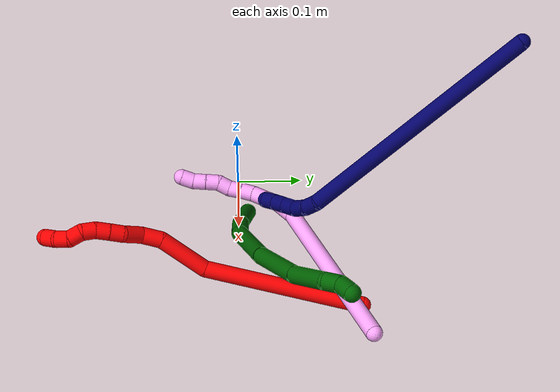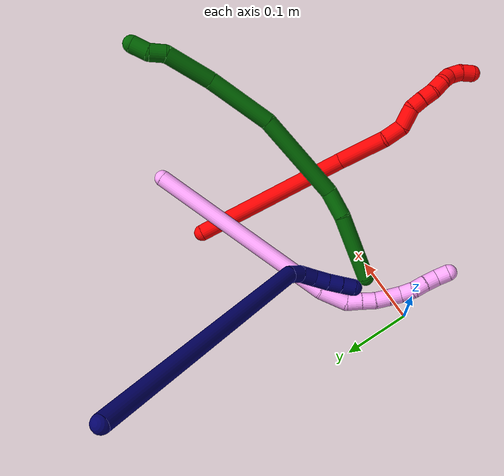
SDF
<sdf version="1.7">
 <world name="default">
  <model name="2">
   <static>0</static>
   <link name="2">
    <collision name="collision-cylinder-e_1_1_4">
     <pose>0.037295 -0.091287 -0.067918 2.21045 0.316739 0.615567</pose>
     <geometry><cylinder><radius>0.0125</radius><length>0.239475</length></cylinder></geometry>
     <surface>
      <friction><ode><mu>1.16</mu><mu2>1.16</mu2><slip1>0</slip1><slip2>0</slip2></ode></friction>
      <contact><ode><kp>1e+06</kp><kd>1</kd><max_vel>0</max_vel><min_depth>0.001</min_depth></ode></contact>
     </surface>
    </collision>
    <visual name="visual-cylinder-e_1_1_4">
     <pose>0.037295 -0.091287 -0.067918 2.21045 0.316739 0.615567</pose>
     <geometry><cylinder><radius>0.0125</radius><length>0.239475</length></cylinder></geometry>
     <material><ambient>1 0 0 1</ambient></material>
    </visual>
    <collision name="collision-cylinder-e_2_4_5">
     <pose>0.087387 -0.200744 -0.167629 2.62237 0.336209 1.13713</pose>
     <geometry><cylinder><radius>0.0125</radius><length>0.077581</length></cylinder></geometry>
     <surface>
      <friction><ode><mu>1.16</mu><mu2>1.16</mu2><slip1>0</slip1><slip2>0</slip2></ode></friction>
      <contact><ode><kp>1e+06</kp><kd>1</kd><max_vel>0</max_vel><min_depth>0.001</min_depth></ode></contact>
     </surface>
    </collision>
    <visual name="visual-cylinder-e_2_4_5">
     <pose>0.087387 -0.200744 -0.167629 2.62237 0.336209 1.13713</pose>
     <geometry><cylinder><radius>0.0125</radius><length>0.077581</length></cylinder></geometry>
     <material><ambient>1 0 0 1</ambient></material>
    </visual>
    <collision name="collision-cylinder-e_3_5_6">
     <pose>0.103304 -0.230261 -0.209207 2.28241 0.205283 0.442317</pose>
     <geometry><cylinder><radius>0.0125</radius><length>0.030608</length></cylinder></geometry>
     <surface>
      <friction><ode><mu>1.16</mu><mu2>1.16</mu2><slip1>0</slip1><slip2>0</slip2></ode></friction>
      <contact><ode><kp>1e+06</kp><kd>1</kd><max_vel>0</max_vel><min_depth>0.001</min_depth></ode></contact>
     </surface>
    </collision>
    <visual name="visual-cylinder-e_3_5_6">
     <pose>0.103304 -0.230261 -0.209207 2.28241 0.205283 0.442317</pose>
     <geometry><cylinder><radius>0.0125</radius><length>0.030608</length></cylinder></geometry>
     <material><ambient>1 0 0 1</ambient></material>
    </visual>
    <collision name="collision-cylinder-e_4_6_7">
     <pose>0.101648 -0.251955 -0.229848 2.38018 -0.308231 -0.740491</pose>
     <geometry><cylinder><radius>0.0125</radius><length>0.031479</length></cylinder></geometry>
     <surface>
      <friction><ode><mu>1.16</mu><mu2>1.16</mu2><slip1>0</slip1><slip2>0</slip2></ode></friction>
      <contact><ode><kp>1e+06</kp><kd>1</kd><max_vel>0</max_vel><min_depth>0.001</min_depth></ode></contact>
     </surface>
    </collision>
    <visual name="visual-cylinder-e_4_6_7">
     <pose>0.101648 -0.251955 -0.229848 2.38018 -0.308231 -0.740491</pose>
     <geometry><cylinder><radius>0.0125</radius><length>0.031479</length></cylinder></geometry>
     <material><ambient>1 0 0 1</ambient></material>
    </visual>
    <collision name="collision-cylinder-e_5_7_8">
     <pose>0.097932 -0.270136 -0.246971 2.24555 0.105153 0.218121</pose>
     <geometry><cylinder><radius>0.0125</radius><length>0.020176</length></cylinder></geometry>
     <surface>
      <friction><ode><mu>1.16</mu><mu2>1.16</mu2><slip1>0</slip1><slip2>0</slip2></ode></friction>
      <contact><ode><kp>1e+06</kp><kd>1</kd><max_vel>0</max_vel><min_depth>0.001</min_depth></ode></contact>
     </surface>
    </collision>
    <visual name="visual-cylinder-e_5_7_8">
     <pose>0.097932 -0.270136 -0.246971 2.24555 0.105153 0.218121</pose>
     <geometry><cylinder><radius>0.0125</radius><length>0.020176</length></cylinder></geometry>
     <material><ambient>1 0 0 1</ambient></material>
    </visual>
    <collision name="collision-cylinder-e_6_8_9">
     <pose>0.100683 -0.286177 -0.258938 2.17784 0.16772 0.318717</pose>
     <geometry><cylinder><radius>0.0125</radius><length>0.020269</length></cylinder></geometry>
     <surface>
      <friction><ode><mu>1.16</mu><mu2>1.16</mu2><slip1>0</slip1><slip2>0</slip2></ode></friction>
      <contact><ode><kp>1e+06</kp><kd>1</kd><max_vel>0</max_vel><min_depth>0.001</min_depth></ode></contact>
     </surface>
    </collision>
    <visual name="visual-cylinder-e_6_8_9">
     <pose>0.100683 -0.286177 -0.258938 2.17784 0.16772 0.318717</pose>
     <geometry><cylinder><radius>0.0125</radius><length>0.020269</length></cylinder></geometry>
     <material><ambient>1 0 0 1</ambient></material>
    </visual>
    <collision name="collision-cylinder-e_7_9_10">
     <pose>0.102095 -0.303619 -0.268661 1.98166 -0.027733 -0.042329</pose>
     <geometry><cylinder><radius>0.0125</radius><length>0.020155</length></cylinder></geometry>
     <surface>
      <friction><ode><mu>1.16</mu><mu2>1.16</mu2><slip1>0</slip1><slip2>0</slip2></ode></friction>
      <contact><ode><kp>1e+06</kp><kd>1</kd><max_vel>0</max_vel><min_depth>0.001</min_depth></ode></contact>
     </surface>
    </collision>
    <visual name="visual-cylinder-e_7_9_10">
     <pose>0.102095 -0.303619 -0.268661 1.98166 -0.027733 -0.042329</pose>
     <geometry><cylinder><radius>0.0125</radius><length>0.020155</length></cylinder></geometry>
     <material><ambient>1 0 0 1</ambient></material>
    </visual>
    <collision name="collision-cylinder-e_8_10_11">
     <pose>0.102023 -0.322948 -0.272143 1.51713 0.020455 0.019386</pose>
     <geometry><cylinder><radius>0.0125</radius><length>0.020221</length></cylinder></geometry>
     <surface>
      <friction><ode><mu>1.16</mu><mu2>1.16</mu2><slip1>0</slip1><slip2>0</slip2></ode></friction>
      <contact><ode><kp>1e+06</kp><kd>1</kd><max_vel>0</max_vel><min_depth>0.001</min_depth></ode></contact>
     </surface>
    </collision>
    <visual name="visual-cylinder-e_8_10_11">
     <pose>0.102023 -0.322948 -0.272143 1.51713 0.020455 0.019386</pose>
     <geometry><cylinder><radius>0.0125</radius><length>0.020221</length></cylinder></geometry>
     <material><ambient>1 0 0 1</ambient></material>
    </visual>
    <collision name="collision-cylinder-e_9_11_12">
     <pose>0.106302 -0.34187 -0.273997 1.83585 0.418807 0.542114</pose>
     <geometry><cylinder><radius>0.0125</radius><length>0.020026</length></cylinder></geometry>
     <surface>
      <friction><ode><mu>1.16</mu><mu2>1.16</mu2><slip1>0</slip1><slip2>0</slip2></ode></friction>
      <contact><ode><kp>1e+06</kp><kd>1</kd><max_vel>0</max_vel><min_depth>0.001</min_depth></ode></contact>
     </surface>
    </collision>
    <visual name="visual-cylinder-e_9_11_12">
     <pose>0.106302 -0.34187 -0.273997 1.83585 0.418807 0.542114</pose>
     <geometry><cylinder><radius>0.0125</radius><length>0.020026</length></cylinder></geometry>
     <material><ambient>1 0 0 1</ambient></material>
    </visual>
    <collision name="collision-cylinder-e_10_12_2">
     <pose>0.117249 -0.357853 -0.277673 1.74775 0.757574 0.8877</pose>
     <geometry><cylinder><radius>0.0125</radius><length>0.020011</length></cylinder></geometry>
     <surface>
      <friction><ode><mu>1.16</mu><mu2>1.16</mu2><slip1>0</slip1><slip2>0</slip2></ode></friction>
      <contact><ode><kp>1e+06</kp><kd>1</kd><max_vel>0</max_vel><min_depth>0.001</min_depth></ode></contact>
     </surface>
    </collision>
    <visual name="visual-cylinder-e_10_12_2">
     <pose>0.117249 -0.357853 -0.277673 1.74775 0.757574 0.8877</pose>
     <geometry><cylinder><radius>0.0125</radius><length>0.020011</length></cylinder></geometry>
     <material><ambient>1 0 0 1</ambient></material>
    </visual>
    <collision name="collision-sphere-2">
     <pose>0.124124 -0.365009 -0.278952 0 -0 0</pose>
     <geometry><sphere><radius>0.0125</radius></sphere></geometry>
     <surface>
      <friction><ode><mu>1.16</mu><mu2>1.16</mu2><slip1>0</slip1><slip2>0</slip2></ode></friction>
      <contact><ode><kp>1e+06</kp><kd>1</kd><max_vel>0</max_vel><min_depth>0.001</min_depth></ode></contact>
     </surface>
    </collision>
    <visual name="visual-sphere-2">
     <pose>0.124124 -0.365009 -0.278952 0 -0 0</pose>
     <geometry><sphere><radius>0.0125</radius></sphere></geometry>
     <material><ambient>1 0 0 1</ambient></material>
    </visual>
    <collision name="collision-sphere-12">
     <pose>0.110374 -0.350698 -0.276393 0 -0 0</pose>
     <geometry><sphere><radius>0.0125</radius></sphere></geometry>
     <surface>
      <friction><ode><mu>1.16</mu><mu2>1.16</mu2><slip1>0</slip1><slip2>0</slip2></ode></friction>
      <contact><ode><kp>1e+06</kp><kd>1</kd><max_vel>0</max_vel><min_depth>0.001</min_depth></ode></contact>
     </surface>
    </collision>
    <visual name="visual-sphere-12">
     <pose>0.110374 -0.350698 -0.276393 0 -0 0</pose>
     <geometry><sphere><radius>0.0125</radius></sphere></geometry>
     <material><ambient>1 0 0 1</ambient></material>
    </visual>
    <collision name="collision-sphere-11">
     <pose>0.102229 -0.333041 -0.2716 0 -0 0</pose>
     <geometry><sphere><radius>0.0125</radius></sphere></geometry>
     <surface>
      <friction><ode><mu>1.16</mu><mu2>1.16</mu2><slip1>0</slip1><slip2>0</slip2></ode></friction>
      <contact><ode><kp>1e+06</kp><kd>1</kd><max_vel>0</max_vel><min_depth>0.001</min_depth></ode></contact>
     </surface>
    </collision>
    <visual name="visual-sphere-11">
     <pose>0.102229 -0.333041 -0.2716 0 -0 0</pose>
     <geometry><sphere><radius>0.0125</radius></sphere></geometry>
     <material><ambient>1 0 0 1</ambient></material>
    </visual>
    <collision name="collision-sphere-10">
     <pose>0.101816 -0.312854 -0.272685 0 -0 0</pose>
     <geometry><sphere><radius>0.0125</radius></sphere></geometry>
     <surface>
      <friction><ode><mu>1.16</mu><mu2>1.16</mu2><slip1>0</slip1><slip2>0</slip2></ode></friction>
      <contact><ode><kp>1e+06</kp><kd>1</kd><max_vel>0</max_vel><min_depth>0.001</min_depth></ode></contact>
     </surface>
    </collision>
    <visual name="visual-sphere-10">
     <pose>0.101816 -0.312854 -0.272685 0 -0 0</pose>
     <geometry><sphere><radius>0.0125</radius></sphere></geometry>
     <material><ambient>1 0 0 1</ambient></material>
    </visual>
    <collision name="collision-sphere-9">
     <pose>0.102375 -0.294384 -0.264638 0 -0 0</pose>
     <geometry><sphere><radius>0.0125</radius></sphere></geometry>
     <surface>
      <friction><ode><mu>1.16</mu><mu2>1.16</mu2><slip1>0</slip1><slip2>0</slip2></ode></friction>
      <contact><ode><kp>1e+06</kp><kd>1</kd><max_vel>0</max_vel><min_depth>0.001</min_depth></ode></contact>
     </surface>
    </collision>
    <visual name="visual-sphere-9">
     <pose>0.102375 -0.294384 -0.264638 0 -0 0</pose>
     <geometry><sphere><radius>0.0125</radius></sphere></geometry>
     <material><ambient>1 0 0 1</ambient></material>
    </visual>
    <collision name="collision-sphere-4">
     <pose>0.074589 -0.182574 -0.135837 0 -0 0</pose>
     <geometry><sphere><radius>0.0125</radius></sphere></geometry>
     <surface>
      <friction><ode><mu>1.16</mu><mu2>1.16</mu2><slip1>0</slip1><slip2>0</slip2></ode></friction>
      <contact><ode><kp>1e+06</kp><kd>1</kd><max_vel>0</max_vel><min_depth>0.001</min_depth></ode></contact>
     </surface>
    </collision>
    <visual name="visual-sphere-4">
     <pose>0.074589 -0.182574 -0.135837 0 -0 0</pose>
     <geometry><sphere><radius>0.0125</radius></sphere></geometry>
     <material><ambient>1 0 0 1</ambient></material>
    </visual>
    <collision name="collision-sphere-1">
     <geometry><sphere><radius>0.0125</radius></sphere></geometry>
     <surface>
      <friction><ode><mu>1.16</mu><mu2>1.16</mu2><slip1>0</slip1><slip2>0</slip2></ode></friction>
      <contact><ode><kp>1e+06</kp><kd>1</kd><max_vel>0</max_vel><min_depth>0.001</min_depth></ode></contact>
     </surface>
    </collision>
    <visual name="visual-sphere-1">
     <geometry><sphere><radius>0.0125</radius></sphere></geometry>
     <material><ambient>1 0 0 1</ambient></material>
    </visual>
    <collision name="collision-sphere-8">
     <pose>0.098991 -0.27797 -0.253238 0 -0 0</pose>
     <geometry><sphere><radius>0.0125</radius></sphere></geometry>
     <surface>
      <friction><ode><mu>1.16</mu><mu2>1.16</mu2><slip1>0</slip1><slip2>0</slip2></ode></friction>
      <contact><ode><kp>1e+06</kp><kd>1</kd><max_vel>0</max_vel><min_depth>0.001</min_depth></ode></contact>
     </surface>
    </collision>
    <visual name="visual-sphere-8">
     <pose>0.098991 -0.27797 -0.253238 0 -0 0</pose>
     <geometry><sphere><radius>0.0125</radius></sphere></geometry>
     <material><ambient>1 0 0 1</ambient></material>
    </visual>
    <collision name="collision-sphere-5">
     <pose>0.100184 -0.218914 -0.199422 0 -0 0</pose>
     <geometry><sphere><radius>0.0125</radius></sphere></geometry>
     <surface>
      <friction><ode><mu>1.16</mu><mu2>1.16</mu2><slip1>0</slip1><slip2>0</slip2></ode></friction>
      <contact><ode><kp>1e+06</kp><kd>1</kd><max_vel>0</max_vel><min_depth>0.001</min_depth></ode></contact>
     </surface>
    </collision>
    <visual name="visual-sphere-5">
     <pose>0.100184 -0.218914 -0.199422 0 -0 0</pose>
     <geometry><sphere><radius>0.0125</radius></sphere></geometry>
     <material><ambient>1 0 0 1</ambient></material>
    </visual>
    <collision name="collision-sphere-6">
     <pose>0.106423 -0.241608 -0.218991 0 -0 0</pose>
     <geometry><sphere><radius>0.0125</radius></sphere></geometry>
     <surface>
      <friction><ode><mu>1.16</mu><mu2>1.16</mu2><slip1>0</slip1><slip2>0</slip2></ode></friction>
      <contact><ode><kp>1e+06</kp><kd>1</kd><max_vel>0</max_vel><min_depth>0.001</min_depth></ode></contact>
     </surface>
    </collision>
    <visual name="visual-sphere-6">
     <pose>0.106423 -0.241608 -0.218991 0 -0 0</pose>
     <geometry><sphere><radius>0.0125</radius></sphere></geometry>
     <material><ambient>1 0 0 1</ambient></material>
    </visual>
    <collision name="collision-sphere-7">
     <pose>0.096874 -0.262303 -0.240704 0 -0 0</pose>
     <geometry><sphere><radius>0.0125</radius></sphere></geometry>
     <surface>
      <friction><ode><mu>1.16</mu><mu2>1.16</mu2><slip1>0</slip1><slip2>0</slip2></ode></friction>
      <contact><ode><kp>1e+06</kp><kd>1</kd><max_vel>0</max_vel><min_depth>0.001</min_depth></ode></contact>
     </surface>
    </collision>
    <visual name="visual-sphere-7">
     <pose>0.096874 -0.262303 -0.240704 0 -0 0</pose>
     <geometry><sphere><radius>0.0125</radius></sphere></geometry>
     <material><ambient>1 0 0 1</ambient></material>
    </visual>
    <inertial>
     <pose>0.069369 -0.180643 -0.150202 0 -0 0</pose>
     <mass>0.5</mass>
     <inertia>
      <ixx>0.001605</ixx>
      <ixy>0</ixy>
      <ixz>0</ixz>
      <iyy>0.000232</iyy>
      <iyz>0</iyz>
      <izz>0.000515</izz>
     </inertia>
    </inertial>
   </link>
   <pose>0.277744 0.182442 0.012229 2.80392 0.239903 -2.9048</pose>
  </model>
  <model name="4">
   <static>0</static>
   <link name="4">
    <collision name="collision-cylinder-e_1_1_4">
     <pose>-0.129075 0.06884 -0.020297 -1.85751 -1.06333 1.33304</pose>
     <geometry><cylinder><radius>0.0125</radius><length>0.295374</length></cylinder></geometry>
     <surface>
      <friction><ode><mu>1.16</mu><mu2>1.16</mu2><slip1>0</slip1><slip2>0</slip2></ode></friction>
      <contact><ode><kp>1e+06</kp><kd>1</kd><max_vel>0</max_vel><min_depth>0.001</min_depth></ode></contact>
     </surface>
    </collision>
    <visual name="visual-cylinder-e_1_1_4">
     <pose>-0.129075 0.06884 -0.020297 -1.85751 -1.06333 1.33304</pose>
     <geometry><cylinder><radius>0.0125</radius><length>0.295374</length></cylinder></geometry>
     <material><ambient>1 0.65098 0.996078 1</ambient></material>
    </visual>
    <collision name="collision-cylinder-e_2_4_5">
     <pose>-0.274368 0.150797 -0.041113 -1.61037 -0.890331 0.921483</pose>
     <geometry><cylinder><radius>0.0125</radius><length>0.041729</length></cylinder></geometry>
     <surface>
      <friction><ode><mu>1.16</mu><mu2>1.16</mu2><slip1>0</slip1><slip2>0</slip2></ode></friction>
      <contact><ode><kp>1e+06</kp><kd>1</kd><max_vel>0</max_vel><min_depth>0.001</min_depth></ode></contact>
     </surface>
    </collision>
    <visual name="visual-cylinder-e_2_4_5">
     <pose>-0.274368 0.150797 -0.041113 -1.61037 -0.890331 0.921483</pose>
     <geometry><cylinder><radius>0.0125</radius><length>0.041729</length></cylinder></geometry>
     <material><ambient>1 0.65098 0.996078 1</ambient></material>
    </visual>
    <collision name="collision-cylinder-e_3_5_6">
     <pose>-0.294985 0.174392 -0.040984 -1.50897 -0.39686 0.373619</pose>
     <geometry><cylinder><radius>0.0125</radius><length>0.022765</length></cylinder></geometry>
     <surface>
      <friction><ode><mu>1.16</mu><mu2>1.16</mu2><slip1>0</slip1><slip2>0</slip2></ode></friction>
      <contact><ode><kp>1e+06</kp><kd>1</kd><max_vel>0</max_vel><min_depth>0.001</min_depth></ode></contact>
     </surface>
    </collision>
    <visual name="visual-cylinder-e_3_5_6">
     <pose>-0.294985 0.174392 -0.040984 -1.50897 -0.39686 0.373619</pose>
     <geometry><cylinder><radius>0.0125</radius><length>0.022765</length></cylinder></geometry>
     <material><ambient>1 0.65098 0.996078 1</ambient></material>
    </visual>
    <collision name="collision-cylinder-e_4_6_7">
     <pose>-0.30368 0.193911 -0.039992 -1.53287 -0.443264 0.427269</pose>
     <geometry><cylinder><radius>0.0125</radius><length>0.020031</length></cylinder></geometry>
     <surface>
      <friction><ode><mu>1.16</mu><mu2>1.16</mu2><slip1>0</slip1><slip2>0</slip2></ode></friction>
      <contact><ode><kp>1e+06</kp><kd>1</kd><max_vel>0</max_vel><min_depth>0.001</min_depth></ode></contact>
     </surface>
    </collision>
    <visual name="visual-cylinder-e_4_6_7">
     <pose>-0.30368 0.193911 -0.039992 -1.53287 -0.443264 0.427269</pose>
     <geometry><cylinder><radius>0.0125</radius><length>0.020031</length></cylinder></geometry>
     <material><ambient>1 0.65098 0.996078 1</ambient></material>
    </visual>
    <collision name="collision-cylinder-e_5_7_8">
     <pose>-0.310631 0.212553 -0.038498 -1.45151 -0.267983 0.238085</pose>
     <geometry><cylinder><radius>0.0125</radius><length>0.020056</length></cylinder></geometry>
     <surface>
      <friction><ode><mu>1.16</mu><mu2>1.16</mu2><slip1>0</slip1><slip2>0</slip2></ode></friction>
      <contact><ode><kp>1e+06</kp><kd>1</kd><max_vel>0</max_vel><min_depth>0.001</min_depth></ode></contact>
     </surface>
    </collision>
    <visual name="visual-cylinder-e_5_7_8">
     <pose>-0.310631 0.212553 -0.038498 -1.45151 -0.267983 0.238085</pose>
     <geometry><cylinder><radius>0.0125</radius><length>0.020056</length></cylinder></geometry>
     <material><ambient>1 0.65098 0.996078 1</ambient></material>
    </visual>
    <collision name="collision-cylinder-e_6_8_9">
     <pose>-0.315752 0.231683 -0.035499 -1.3792 -0.248712 0.205441</pose>
     <geometry><cylinder><radius>0.0125</radius><length>0.020028</length></cylinder></geometry>
     <surface>
      <friction><ode><mu>1.16</mu><mu2>1.16</mu2><slip1>0</slip1><slip2>0</slip2></ode></friction>
      <contact><ode><kp>1e+06</kp><kd>1</kd><max_vel>0</max_vel><min_depth>0.001</min_depth></ode></contact>
     </surface>
    </collision>
    <visual name="visual-cylinder-e_6_8_9">
     <pose>-0.315752 0.231683 -0.035499 -1.3792 -0.248712 0.205441</pose>
     <geometry><cylinder><radius>0.0125</radius><length>0.020028</length></cylinder></geometry>
     <material><ambient>1 0.65098 0.996078 1</ambient></material>
    </visual>
    <collision name="collision-cylinder-e_7_9_10">
     <pose>-0.319207 0.250979 -0.035576 -1.76543 -0.099132 0.120534</pose>
     <geometry><cylinder><radius>0.0125</radius><length>0.020009</length></cylinder></geometry>
     <surface>
      <friction><ode><mu>1.16</mu><mu2>1.16</mu2><slip1>0</slip1><slip2>0</slip2></ode></friction>
      <contact><ode><kp>1e+06</kp><kd>1</kd><max_vel>0</max_vel><min_depth>0.001</min_depth></ode></contact>
     </surface>
    </collision>
    <visual name="visual-cylinder-e_7_9_10">
     <pose>-0.319207 0.250979 -0.035576 -1.76543 -0.099132 0.120534</pose>
     <geometry><cylinder><radius>0.0125</radius><length>0.020009</length></cylinder></geometry>
     <material><ambient>1 0.65098 0.996078 1</ambient></material>
    </visual>
    <collision name="collision-cylinder-e_8_10_11">
     <pose>-0.320035 0.270534 -0.035446 -1.36376 0.016202 -0.013152</pose>
     <geometry><cylinder><radius>0.0125</radius><length>0.020005</length></cylinder></geometry>
     <surface>
      <friction><ode><mu>1.16</mu><mu2>1.16</mu2><slip1>0</slip1><slip2>0</slip2></ode></friction>
      <contact><ode><kp>1e+06</kp><kd>1</kd><max_vel>0</max_vel><min_depth>0.001</min_depth></ode></contact>
     </surface>
    </collision>
    <visual name="visual-cylinder-e_8_10_11">
     <pose>-0.320035 0.270534 -0.035446 -1.36376 0.016202 -0.013152</pose>
     <geometry><cylinder><radius>0.0125</radius><length>0.020005</length></cylinder></geometry>
     <material><ambient>1 0.65098 0.996078 1</ambient></material>
    </visual>
    <collision name="collision-cylinder-e_9_11_12">
     <pose>-0.320479 0.289984 -0.030884 -1.31704 -0.060605 0.046898</pose>
     <geometry><cylinder><radius>0.0125</radius><length>0.020001</length></cylinder></geometry>
     <surface>
      <friction><ode><mu>1.16</mu><mu2>1.16</mu2><slip1>0</slip1><slip2>0</slip2></ode></friction>
      <contact><ode><kp>1e+06</kp><kd>1</kd><max_vel>0</max_vel><min_depth>0.001</min_depth></ode></contact>
     </surface>
    </collision>
    <visual name="visual-cylinder-e_9_11_12">
     <pose>-0.320479 0.289984 -0.030884 -1.31704 -0.060605 0.046898</pose>
     <geometry><cylinder><radius>0.0125</radius><length>0.020001</length></cylinder></geometry>
     <material><ambient>1 0.65098 0.996078 1</ambient></material>
    </visual>
    <collision name="collision-cylinder-e_10_12_2">
     <pose>-0.321601 0.30962 -0.028914 -1.62447 -0.051654 0.054502</pose>
     <geometry><cylinder><radius>0.0125</radius><length>0.020002</length></cylinder></geometry>
     <surface>
      <friction><ode><mu>1.16</mu><mu2>1.16</mu2><slip1>0</slip1><slip2>0</slip2></ode></friction>
      <contact><ode><kp>1e+06</kp><kd>1</kd><max_vel>0</max_vel><min_depth>0.001</min_depth></ode></contact>
     </surface>
    </collision>
    <visual name="visual-cylinder-e_10_12_2">
     <pose>-0.321601 0.30962 -0.028914 -1.62447 -0.051654 0.054502</pose>
     <geometry><cylinder><radius>0.0125</radius><length>0.020002</length></cylinder></geometry>
     <material><ambient>1 0.65098 0.996078 1</ambient></material>
    </visual>
    <collision name="collision-sphere-2">
     <pose>-0.322117 0.319593 -0.02945 0 -0 0</pose>
     <geometry><sphere><radius>0.0125</radius></sphere></geometry>
     <surface>
      <friction><ode><mu>1.16</mu><mu2>1.16</mu2><slip1>0</slip1><slip2>0</slip2></ode></friction>
      <contact><ode><kp>1e+06</kp><kd>1</kd><max_vel>0</max_vel><min_depth>0.001</min_depth></ode></contact>
     </surface>
    </collision>
    <visual name="visual-sphere-2">
     <pose>-0.322117 0.319593 -0.02945 0 -0 0</pose>
     <geometry><sphere><radius>0.0125</radius></sphere></geometry>
     <material><ambient>1 0.65098 0.996078 1</ambient></material>
    </visual>
    <collision name="collision-sphere-12">
     <pose>-0.321084 0.299646 -0.028379 0 -0 0</pose>
     <geometry><sphere><radius>0.0125</radius></sphere></geometry>
     <surface>
      <friction><ode><mu>1.16</mu><mu2>1.16</mu2><slip1>0</slip1><slip2>0</slip2></ode></friction>
      <contact><ode><kp>1e+06</kp><kd>1</kd><max_vel>0</max_vel><min_depth>0.001</min_depth></ode></contact>
     </surface>
    </collision>
    <visual name="visual-sphere-12">
     <pose>-0.321084 0.299646 -0.028379 0 -0 0</pose>
     <geometry><sphere><radius>0.0125</radius></sphere></geometry>
     <material><ambient>1 0.65098 0.996078 1</ambient></material>
    </visual>
    <collision name="collision-sphere-11">
     <pose>-0.319873 0.280322 -0.03339 0 -0 0</pose>
     <geometry><sphere><radius>0.0125</radius></sphere></geometry>
     <surface>
      <friction><ode><mu>1.16</mu><mu2>1.16</mu2><slip1>0</slip1><slip2>0</slip2></ode></friction>
      <contact><ode><kp>1e+06</kp><kd>1</kd><max_vel>0</max_vel><min_depth>0.001</min_depth></ode></contact>
     </surface>
    </collision>
    <visual name="visual-sphere-11">
     <pose>-0.319873 0.280322 -0.03339 0 -0 0</pose>
     <geometry><sphere><radius>0.0125</radius></sphere></geometry>
     <material><ambient>1 0.65098 0.996078 1</ambient></material>
    </visual>
    <collision name="collision-sphere-10">
     <pose>-0.320197 0.260747 -0.037502 0 -0 0</pose>
     <geometry><sphere><radius>0.0125</radius></sphere></geometry>
     <surface>
      <friction><ode><mu>1.16</mu><mu2>1.16</mu2><slip1>0</slip1><slip2>0</slip2></ode></friction>
      <contact><ode><kp>1e+06</kp><kd>1</kd><max_vel>0</max_vel><min_depth>0.001</min_depth></ode></contact>
     </surface>
    </collision>
    <visual name="visual-sphere-10">
     <pose>-0.320197 0.260747 -0.037502 0 -0 0</pose>
     <geometry><sphere><radius>0.0125</radius></sphere></geometry>
     <material><ambient>1 0.65098 0.996078 1</ambient></material>
    </visual>
    <collision name="collision-sphere-9">
     <pose>-0.318217 0.241211 -0.033651 0 -0 0</pose>
     <geometry><sphere><radius>0.0125</radius></sphere></geometry>
     <surface>
      <friction><ode><mu>1.16</mu><mu2>1.16</mu2><slip1>0</slip1><slip2>0</slip2></ode></friction>
      <contact><ode><kp>1e+06</kp><kd>1</kd><max_vel>0</max_vel><min_depth>0.001</min_depth></ode></contact>
     </surface>
    </collision>
    <visual name="visual-sphere-9">
     <pose>-0.318217 0.241211 -0.033651 0 -0 0</pose>
     <geometry><sphere><radius>0.0125</radius></sphere></geometry>
     <material><ambient>1 0.65098 0.996078 1</ambient></material>
    </visual>
    <collision name="collision-sphere-4">
     <pose>-0.258151 0.137681 -0.040594 0 -0 0</pose>
     <geometry><sphere><radius>0.0125</radius></sphere></geometry>
     <surface>
      <friction><ode><mu>1.16</mu><mu2>1.16</mu2><slip1>0</slip1><slip2>0</slip2></ode></friction>
      <contact><ode><kp>1e+06</kp><kd>1</kd><max_vel>0</max_vel><min_depth>0.001</min_depth></ode></contact>
     </surface>
    </collision>
    <visual name="visual-sphere-4">
     <pose>-0.258151 0.137681 -0.040594 0 -0 0</pose>
     <geometry><sphere><radius>0.0125</radius></sphere></geometry>
     <material><ambient>1 0.65098 0.996078 1</ambient></material>
    </visual>
    <collision name="collision-sphere-1">
     <geometry><sphere><radius>0.0125</radius></sphere></geometry>
     <surface>
      <friction><ode><mu>1.16</mu><mu2>1.16</mu2><slip1>0</slip1><slip2>0</slip2></ode></friction>
      <contact><ode><kp>1e+06</kp><kd>1</kd><max_vel>0</max_vel><min_depth>0.001</min_depth></ode></contact>
     </surface>
    </collision>
    <visual name="visual-sphere-1">
     <geometry><sphere><radius>0.0125</radius></sphere></geometry>
     <material><ambient>1 0.65098 0.996078 1</ambient></material>
    </visual>
    <collision name="collision-sphere-8">
     <pose>-0.313287 0.222155 -0.037348 0 -0 0</pose>
     <geometry><sphere><radius>0.0125</radius></sphere></geometry>
     <surface>
      <friction><ode><mu>1.16</mu><mu2>1.16</mu2><slip1>0</slip1><slip2>0</slip2></ode></friction>
      <contact><ode><kp>1e+06</kp><kd>1</kd><max_vel>0</max_vel><min_depth>0.001</min_depth></ode></contact>
     </surface>
    </collision>
    <visual name="visual-sphere-8">
     <pose>-0.313287 0.222155 -0.037348 0 -0 0</pose>
     <geometry><sphere><radius>0.0125</radius></sphere></geometry>
     <material><ambient>1 0.65098 0.996078 1</ambient></material>
    </visual>
    <collision name="collision-sphere-5">
     <pose>-0.290585 0.163914 -0.041633 0 -0 0</pose>
     <geometry><sphere><radius>0.0125</radius></sphere></geometry>
     <surface>
      <friction><ode><mu>1.16</mu><mu2>1.16</mu2><slip1>0</slip1><slip2>0</slip2></ode></friction>
      <contact><ode><kp>1e+06</kp><kd>1</kd><max_vel>0</max_vel><min_depth>0.001</min_depth></ode></contact>
     </surface>
    </collision>
    <visual name="visual-sphere-5">
     <pose>-0.290585 0.163914 -0.041633 0 -0 0</pose>
     <geometry><sphere><radius>0.0125</radius></sphere></geometry>
     <material><ambient>1 0.65098 0.996078 1</ambient></material>
    </visual>
    <collision name="collision-sphere-6">
     <pose>-0.299385 0.18487 -0.040335 0 -0 0</pose>
     <geometry><sphere><radius>0.0125</radius></sphere></geometry>
     <surface>
      <friction><ode><mu>1.16</mu><mu2>1.16</mu2><slip1>0</slip1><slip2>0</slip2></ode></friction>
      <contact><ode><kp>1e+06</kp><kd>1</kd><max_vel>0</max_vel><min_depth>0.001</min_depth></ode></contact>
     </surface>
    </collision>
    <visual name="visual-sphere-6">
     <pose>-0.299385 0.18487 -0.040335 0 -0 0</pose>
     <geometry><sphere><radius>0.0125</radius></sphere></geometry>
     <material><ambient>1 0.65098 0.996078 1</ambient></material>
    </visual>
    <collision name="collision-sphere-7">
     <pose>-0.307976 0.202952 -0.039649 0 -0 0</pose>
     <geometry><sphere><radius>0.0125</radius></sphere></geometry>
     <surface>
      <friction><ode><mu>1.16</mu><mu2>1.16</mu2><slip1>0</slip1><slip2>0</slip2></ode></friction>
      <contact><ode><kp>1e+06</kp><kd>1</kd><max_vel>0</max_vel><min_depth>0.001</min_depth></ode></contact>
     </surface>
    </collision>
    <visual name="visual-sphere-7">
     <pose>-0.307976 0.202952 -0.039649 0 -0 0</pose>
     <geometry><sphere><radius>0.0125</radius></sphere></geometry>
     <material><ambient>1 0.65098 0.996078 1</ambient></material>
    </visual>
    <inertial>
     <pose>-0.201118 0.131621 -0.02709 0 -0 0</pose>
     <mass>0.5</mass>
     <inertia>
      <ixx>0.001262</ixx>
      <ixy>0</ixy>
      <ixz>0</ixz>
      <iyy>0.002672</iyy>
      <iyz>0</iyz>
      <izz>0.00087</izz>
     </inertia>
    </inertial>
   </link>
   <pose>0.369347 0.191584 0.056865 2.87686 -0.425776 -0.05677</pose>
  </model>
  <model name="6">
   <static>0</static>
   <link name="6">
    <collision name="collision-cylinder-e_1_1_4">
     <pose>0.023574 0.003421 0.045878 -0.074425 0.473541 -0.017966</pose>
     <geometry><cylinder><radius>0.0125</radius><length>0.103387</length></cylinder></geometry>
     <surface>
      <friction><ode><mu>1.16</mu><mu2>1.16</mu2><slip1>0</slip1><slip2>0</slip2></ode></friction>
      <contact><ode><kp>1e+06</kp><kd>1</kd><max_vel>0</max_vel><min_depth>0.001</min_depth></ode></contact>
     </surface>
    </collision>
    <visual name="visual-cylinder-e_1_1_4">
     <pose>0.023574 0.003421 0.045878 -0.074425 0.473541 -0.017966</pose>
     <geometry><cylinder><radius>0.0125</radius><length>0.103387</length></cylinder></geometry>
     <material><ambient>0 0.392157 0.003922 1</ambient></material>
    </visual>
    <collision name="collision-cylinder-e_2_4_5">
     <pose>0.053446 0.011344 0.110902 -0.230939 0.309854 -0.036225</pose>
     <geometry><cylinder><radius>0.0125</radius><length>0.041304</length></cylinder></geometry>
     <surface>
      <friction><ode><mu>1.16</mu><mu2>1.16</mu2><slip1>0</slip1><slip2>0</slip2></ode></friction>
      <contact><ode><kp>1e+06</kp><kd>1</kd><max_vel>0</max_vel><min_depth>0.001</min_depth></ode></contact>
     </surface>
    </collision>
    <visual name="visual-cylinder-e_2_4_5">
     <pose>0.053446 0.011344 0.110902 -0.230939 0.309854 -0.036225</pose>
     <geometry><cylinder><radius>0.0125</radius><length>0.041304</length></cylinder></geometry>
     <material><ambient>0 0.392157 0.003922 1</ambient></material>
    </visual>
    <collision name="collision-cylinder-e_3_5_6">
     <pose>0.069747 0.014707 0.197898 0.016776 0.146371 0.00123</pose>
     <geometry><cylinder><radius>0.0125</radius><length>0.137184</length></cylinder></geometry>
     <surface>
      <friction><ode><mu>1.16</mu><mu2>1.16</mu2><slip1>0</slip1><slip2>0</slip2></ode></friction>
      <contact><ode><kp>1e+06</kp><kd>1</kd><max_vel>0</max_vel><min_depth>0.001</min_depth></ode></contact>
     </surface>
    </collision>
    <visual name="visual-cylinder-e_3_5_6">
     <pose>0.069747 0.014707 0.197898 0.016776 0.146371 0.00123</pose>
     <geometry><cylinder><radius>0.0125</radius><length>0.137184</length></cylinder></geometry>
     <material><ambient>0 0.392157 0.003922 1</ambient></material>
    </visual>
    <collision name="collision-cylinder-e_4_6_7">
     <pose>0.075922 0.009827 0.31485 0.076064 -0.077598 -0.002954</pose>
     <geometry><cylinder><radius>0.0125</radius><length>0.098788</length></cylinder></geometry>
     <surface>
      <friction><ode><mu>1.16</mu><mu2>1.16</mu2><slip1>0</slip1><slip2>0</slip2></ode></friction>
      <contact><ode><kp>1e+06</kp><kd>1</kd><max_vel>0</max_vel><min_depth>0.001</min_depth></ode></contact>
     </surface>
    </collision>
    <visual name="visual-cylinder-e_4_6_7">
     <pose>0.075922 0.009827 0.31485 0.076064 -0.077598 -0.002954</pose>
     <geometry><cylinder><radius>0.0125</radius><length>0.098788</length></cylinder></geometry>
     <material><ambient>0 0.392157 0.003922 1</ambient></material>
    </visual>
    <collision name="collision-cylinder-e_5_7_8">
     <pose>0.067926 -0.002552 0.398329 0.24614 -0.117041 -0.014494</pose>
     <geometry><cylinder><radius>0.0125</radius><length>0.071378</length></cylinder></geometry>
     <surface>
      <friction><ode><mu>1.16</mu><mu2>1.16</mu2><slip1>0</slip1><slip2>0</slip2></ode></friction>
      <contact><ode><kp>1e+06</kp><kd>1</kd><max_vel>0</max_vel><min_depth>0.001</min_depth></ode></contact>
     </surface>
    </collision>
    <visual name="visual-cylinder-e_5_7_8">
     <pose>0.067926 -0.002552 0.398329 0.24614 -0.117041 -0.014494</pose>
     <geometry><cylinder><radius>0.0125</radius><length>0.071378</length></cylinder></geometry>
     <material><ambient>0 0.392157 0.003922 1</ambient></material>
    </visual>
    <collision name="collision-cylinder-e_6_8_9">
     <pose>0.057393 -0.014231 0.442026 0.315513 -0.575851 -0.094154</pose>
     <geometry><cylinder><radius>0.0125</radius><length>0.023378</length></cylinder></geometry>
     <surface>
      <friction><ode><mu>1.16</mu><mu2>1.16</mu2><slip1>0</slip1><slip2>0</slip2></ode></friction>
      <contact><ode><kp>1e+06</kp><kd>1</kd><max_vel>0</max_vel><min_depth>0.001</min_depth></ode></contact>
     </surface>
    </collision>
    <visual name="visual-cylinder-e_6_8_9">
     <pose>0.057393 -0.014231 0.442026 0.315513 -0.575851 -0.094154</pose>
     <geometry><cylinder><radius>0.0125</radius><length>0.023378</length></cylinder></geometry>
     <material><ambient>0 0.392157 0.003922 1</ambient></material>
    </visual>
    <collision name="collision-cylinder-e_7_9_2">
     <pose>0.047542 -0.016382 0.463098 -0.075652 -0.287537 0.010957</pose>
     <geometry><cylinder><radius>0.0125</radius><length>0.02458</length></cylinder></geometry>
     <surface>
      <friction><ode><mu>1.16</mu><mu2>1.16</mu2><slip1>0</slip1><slip2>0</slip2></ode></friction>
      <contact><ode><kp>1e+06</kp><kd>1</kd><max_vel>0</max_vel><min_depth>0.001</min_depth></ode></contact>
     </surface>
    </collision>
    <visual name="visual-cylinder-e_7_9_2">
     <pose>0.047542 -0.016382 0.463098 -0.075652 -0.287537 0.010957</pose>
     <geometry><cylinder><radius>0.0125</radius><length>0.02458</length></cylinder></geometry>
     <material><ambient>0 0.392157 0.003922 1</ambient></material>
    </visual>
    <collision name="collision-sphere-2">
     <pose>0.044057 -0.015491 0.474849 0 -0 0</pose>
     <geometry><sphere><radius>0.0125</radius></sphere></geometry>
     <surface>
      <friction><ode><mu>1.16</mu><mu2>1.16</mu2><slip1>0</slip1><slip2>0</slip2></ode></friction>
      <contact><ode><kp>1e+06</kp><kd>1</kd><max_vel>0</max_vel><min_depth>0.001</min_depth></ode></contact>
     </surface>
    </collision>
    <visual name="visual-sphere-2">
     <pose>0.044057 -0.015491 0.474849 0 -0 0</pose>
     <geometry><sphere><radius>0.0125</radius></sphere></geometry>
     <material><ambient>0 0.392157 0.003922 1</ambient></material>
    </visual>
    <collision name="collision-sphere-9">
     <pose>0.051028 -0.017273 0.451346 0 -0 0</pose>
     <geometry><sphere><radius>0.0125</radius></sphere></geometry>
     <surface>
      <friction><ode><mu>1.16</mu><mu2>1.16</mu2><slip1>0</slip1><slip2>0</slip2></ode></friction>
      <contact><ode><kp>1e+06</kp><kd>1</kd><max_vel>0</max_vel><min_depth>0.001</min_depth></ode></contact>
     </surface>
    </collision>
    <visual name="visual-sphere-9">
     <pose>0.051028 -0.017273 0.451346 0 -0 0</pose>
     <geometry><sphere><radius>0.0125</radius></sphere></geometry>
     <material><ambient>0 0.392157 0.003922 1</ambient></material>
    </visual>
    <collision name="collision-sphere-4">
     <pose>0.047149 0.006842 0.091756 0 -0 0</pose>
     <geometry><sphere><radius>0.0125</radius></sphere></geometry>
     <surface>
      <friction><ode><mu>1.16</mu><mu2>1.16</mu2><slip1>0</slip1><slip2>0</slip2></ode></friction>
      <contact><ode><kp>1e+06</kp><kd>1</kd><max_vel>0</max_vel><min_depth>0.001</min_depth></ode></contact>
     </surface>
    </collision>
    <visual name="visual-sphere-4">
     <pose>0.047149 0.006842 0.091756 0 -0 0</pose>
     <geometry><sphere><radius>0.0125</radius></sphere></geometry>
     <material><ambient>0 0.392157 0.003922 1</ambient></material>
    </visual>
    <collision name="collision-sphere-1">
     <geometry><sphere><radius>0.0125</radius></sphere></geometry>
     <surface>
      <friction><ode><mu>1.16</mu><mu2>1.16</mu2><slip1>0</slip1><slip2>0</slip2></ode></friction>
      <contact><ode><kp>1e+06</kp><kd>1</kd><max_vel>0</max_vel><min_depth>0.001</min_depth></ode></contact>
     </surface>
    </collision>
    <visual name="visual-sphere-1">
     <geometry><sphere><radius>0.0125</radius></sphere></geometry>
     <material><ambient>0 0.392157 0.003922 1</ambient></material>
    </visual>
    <collision name="collision-sphere-8">
     <pose>0.063758 -0.011189 0.432706 0 -0 0</pose>
     <geometry><sphere><radius>0.0125</radius></sphere></geometry>
     <surface>
      <friction><ode><mu>1.16</mu><mu2>1.16</mu2><slip1>0</slip1><slip2>0</slip2></ode></friction>
      <contact><ode><kp>1e+06</kp><kd>1</kd><max_vel>0</max_vel><min_depth>0.001</min_depth></ode></contact>
     </surface>
    </collision>
    <visual name="visual-sphere-8">
     <pose>0.063758 -0.011189 0.432706 0 -0 0</pose>
     <geometry><sphere><radius>0.0125</radius></sphere></geometry>
     <material><ambient>0 0.392157 0.003922 1</ambient></material>
    </visual>
    <collision name="collision-sphere-5">
     <pose>0.059743 0.015846 0.130049 0 -0 0</pose>
     <geometry><sphere><radius>0.0125</radius></sphere></geometry>
     <surface>
      <friction><ode><mu>1.16</mu><mu2>1.16</mu2><slip1>0</slip1><slip2>0</slip2></ode></friction>
      <contact><ode><kp>1e+06</kp><kd>1</kd><max_vel>0</max_vel><min_depth>0.001</min_depth></ode></contact>
     </surface>
    </collision>
    <visual name="visual-sphere-5">
     <pose>0.059743 0.015846 0.130049 0 -0 0</pose>
     <geometry><sphere><radius>0.0125</radius></sphere></geometry>
     <material><ambient>0 0.392157 0.003922 1</ambient></material>
    </visual>
    <collision name="collision-sphere-6">
     <pose>0.079751 0.013569 0.265747 0 -0 0</pose>
     <geometry><sphere><radius>0.0125</radius></sphere></geometry>
     <surface>
      <friction><ode><mu>1.16</mu><mu2>1.16</mu2><slip1>0</slip1><slip2>0</slip2></ode></friction>
      <contact><ode><kp>1e+06</kp><kd>1</kd><max_vel>0</max_vel><min_depth>0.001</min_depth></ode></contact>
     </surface>
    </collision>
    <visual name="visual-sphere-6">
     <pose>0.079751 0.013569 0.265747 0 -0 0</pose>
     <geometry><sphere><radius>0.0125</radius></sphere></geometry>
     <material><ambient>0 0.392157 0.003922 1</ambient></material>
    </visual>
    <collision name="collision-sphere-7">
     <pose>0.072093 0.006085 0.363953 0 -0 0</pose>
     <geometry><sphere><radius>0.0125</radius></sphere></geometry>
     <surface>
      <friction><ode><mu>1.16</mu><mu2>1.16</mu2><slip1>0</slip1><slip2>0</slip2></ode></friction>
      <contact><ode><kp>1e+06</kp><kd>1</kd><max_vel>0</max_vel><min_depth>0.001</min_depth></ode></contact>
     </surface>
    </collision>
    <visual name="visual-sphere-7">
     <pose>0.072093 0.006085 0.363953 0 -0 0</pose>
     <geometry><sphere><radius>0.0125</radius></sphere></geometry>
     <material><ambient>0 0.392157 0.003922 1</ambient></material>
    </visual>
    <inertial>
     <pose>0.058144 0.005786 0.235449 0 -0 0</pose>
     <mass>0.5</mass>
     <inertia>
      <ixx>0.000432</ixx>
      <ixy>0</ixy>
      <ixz>0</ixz>
      <iyy>0.00044</iyy>
      <iyz>0</iyz>
      <izz>-1.9e-05</izz>
     </inertia>
    </inertial>
   </link>
   <pose>0.079244 0.01488 0.011497 -1.02229 -0.566449 -1.49335</pose>
  </model>
  <model name="7">
   <static>0</static>
   <link name="7">
    <collision name="collision-cylinder-e_1_1_4">
     <pose>0.105166 -0.015351 -0.163858 3.04818 0.568614 2.82439</pose>
     <geometry><cylinder><radius>0.0125</radius><length>0.390616</length></cylinder></geometry>
     <surface>
      <friction><ode><mu>1.16</mu><mu2>1.16</mu2><slip1>0</slip1><slip2>0</slip2></ode></friction>
      <contact><ode><kp>1e+06</kp><kd>1</kd><max_vel>0</max_vel><min_depth>0.001</min_depth></ode></contact>
     </surface>
    </collision>
    <visual name="visual-cylinder-e_1_1_4">
     <pose>0.105166 -0.015351 -0.163858 3.04818 0.568614 2.82439</pose>
     <geometry><cylinder><radius>0.0125</radius><length>0.390616</length></cylinder></geometry>
     <material><ambient>0.003922 0 0.403922 1</ambient></material>
    </visual>
    <collision name="collision-cylinder-e_2_4_5">
     <pose>0.212666 -0.034466 -0.337796 2.78416 0.213514 1.07087</pose>
     <geometry><cylinder><radius>0.0125</radius><length>0.022019</length></cylinder></geometry>
     <surface>
      <friction><ode><mu>1.16</mu><mu2>1.16</mu2><slip1>0</slip1><slip2>0</slip2></ode></friction>
      <contact><ode><kp>1e+06</kp><kd>1</kd><max_vel>0</max_vel><min_depth>0.001</min_depth></ode></contact>
     </surface>
    </collision>
    <visual name="visual-cylinder-e_2_4_5">
     <pose>0.212666 -0.034466 -0.337796 2.78416 0.213514 1.07087</pose>
     <geometry><cylinder><radius>0.0125</radius><length>0.022019</length></cylinder></geometry>
     <material><ambient>0.003922 0 0.403922 1</ambient></material>
    </visual>
    <collision name="collision-cylinder-e_3_5_6">
     <pose>0.214283 -0.044591 -0.357811 2.57208 -0.060549 -0.206185</pose>
     <geometry><cylinder><radius>0.0125</radius><length>0.023637</length></cylinder></geometry>
     <surface>
      <friction><ode><mu>1.16</mu><mu2>1.16</mu2><slip1>0</slip1><slip2>0</slip2></ode></friction>
      <contact><ode><kp>1e+06</kp><kd>1</kd><max_vel>0</max_vel><min_depth>0.001</min_depth></ode></contact>
     </surface>
    </collision>
    <visual name="visual-cylinder-e_3_5_6">
     <pose>0.214283 -0.044591 -0.357811 2.57208 -0.060549 -0.206185</pose>
     <geometry><cylinder><radius>0.0125</radius><length>0.023637</length></cylinder></geometry>
     <material><ambient>0.003922 0 0.403922 1</ambient></material>
    </visual>
    <collision name="collision-cylinder-e_4_6_7">
     <pose>0.212706 -0.059506 -0.375014 2.27516 -0.076659 -0.165445</pose>
     <geometry><cylinder><radius>0.0125</radius><length>0.022514</length></cylinder></geometry>
     <surface>
      <friction><ode><mu>1.16</mu><mu2>1.16</mu2><slip1>0</slip1><slip2>0</slip2></ode></friction>
      <contact><ode><kp>1e+06</kp><kd>1</kd><max_vel>0</max_vel><min_depth>0.001</min_depth></ode></contact>
     </surface>
    </collision>
    <visual name="visual-cylinder-e_4_6_7">
     <pose>0.212706 -0.059506 -0.375014 2.27516 -0.076659 -0.165445</pose>
     <geometry><cylinder><radius>0.0125</radius><length>0.022514</length></cylinder></geometry>
     <material><ambient>0.003922 0 0.403922 1</ambient></material>
    </visual>
    <collision name="collision-cylinder-e_5_7_8">
     <pose>0.211652 -0.076244 -0.388741 2.23888 -0.018418 -0.037992</pose>
     <geometry><cylinder><radius>0.0125</radius><length>0.020857</length></cylinder></geometry>
     <surface>
      <friction><ode><mu>1.16</mu><mu2>1.16</mu2><slip1>0</slip1><slip2>0</slip2></ode></friction>
      <contact><ode><kp>1e+06</kp><kd>1</kd><max_vel>0</max_vel><min_depth>0.001</min_depth></ode></contact>
     </surface>
    </collision>
    <visual name="visual-cylinder-e_5_7_8">
     <pose>0.211652 -0.076244 -0.388741 2.23888 -0.018418 -0.037992</pose>
     <geometry><cylinder><radius>0.0125</radius><length>0.020857</length></cylinder></geometry>
     <material><ambient>0.003922 0 0.403922 1</ambient></material>
    </visual>
    <collision name="collision-cylinder-e_6_8_2">
     <pose>0.211335 -0.092105 -0.401883 2.28715 -0.012282 -0.026976</pose>
     <geometry><cylinder><radius>0.0125</radius><length>0.020356</length></cylinder></geometry>
     <surface>
      <friction><ode><mu>1.16</mu><mu2>1.16</mu2><slip1>0</slip1><slip2>0</slip2></ode></friction>
      <contact><ode><kp>1e+06</kp><kd>1</kd><max_vel>0</max_vel><min_depth>0.001</min_depth></ode></contact>
     </surface>
    </collision>
    <visual name="visual-cylinder-e_6_8_2">
     <pose>0.211335 -0.092105 -0.401883 2.28715 -0.012282 -0.026976</pose>
     <geometry><cylinder><radius>0.0125</radius><length>0.020356</length></cylinder></geometry>
     <material><ambient>0.003922 0 0.403922 1</ambient></material>
    </visual>
    <collision name="collision-sphere-2">
     <pose>0.21121 -0.099781 -0.408566 0 -0 0</pose>
     <geometry><sphere><radius>0.0125</radius></sphere></geometry>
     <surface>
      <friction><ode><mu>1.16</mu><mu2>1.16</mu2><slip1>0</slip1><slip2>0</slip2></ode></friction>
      <contact><ode><kp>1e+06</kp><kd>1</kd><max_vel>0</max_vel><min_depth>0.001</min_depth></ode></contact>
     </surface>
    </collision>
    <visual name="visual-sphere-2">
     <pose>0.21121 -0.099781 -0.408566 0 -0 0</pose>
     <geometry><sphere><radius>0.0125</radius></sphere></geometry>
     <material><ambient>0.003922 0 0.403922 1</ambient></material>
    </visual>
    <collision name="collision-sphere-4">
     <pose>0.210333 -0.030701 -0.327717 0 -0 0</pose>
     <geometry><sphere><radius>0.0125</radius></sphere></geometry>
     <surface>
      <friction><ode><mu>1.16</mu><mu2>1.16</mu2><slip1>0</slip1><slip2>0</slip2></ode></friction>
      <contact><ode><kp>1e+06</kp><kd>1</kd><max_vel>0</max_vel><min_depth>0.001</min_depth></ode></contact>
     </surface>
    </collision>
    <visual name="visual-sphere-4">
     <pose>0.210333 -0.030701 -0.327717 0 -0 0</pose>
     <geometry><sphere><radius>0.0125</radius></sphere></geometry>
     <material><ambient>0.003922 0 0.403922 1</ambient></material>
    </visual>
    <collision name="collision-sphere-1">
     <geometry><sphere><radius>0.0125</radius></sphere></geometry>
     <surface>
      <friction><ode><mu>1.16</mu><mu2>1.16</mu2><slip1>0</slip1><slip2>0</slip2></ode></friction>
      <contact><ode><kp>1e+06</kp><kd>1</kd><max_vel>0</max_vel><min_depth>0.001</min_depth></ode></contact>
     </surface>
    </collision>
    <visual name="visual-sphere-1">
     <geometry><sphere><radius>0.0125</radius></sphere></geometry>
     <material><ambient>0.003922 0 0.403922 1</ambient></material>
    </visual>
    <collision name="collision-sphere-8">
     <pose>0.21146 -0.084429 -0.3952 0 -0 0</pose>
     <geometry><sphere><radius>0.0125</radius></sphere></geometry>
     <surface>
      <friction><ode><mu>1.16</mu><mu2>1.16</mu2><slip1>0</slip1><slip2>0</slip2></ode></friction>
      <contact><ode><kp>1e+06</kp><kd>1</kd><max_vel>0</max_vel><min_depth>0.001</min_depth></ode></contact>
     </surface>
    </collision>
    <visual name="visual-sphere-8">
     <pose>0.21146 -0.084429 -0.3952 0 -0 0</pose>
     <geometry><sphere><radius>0.0125</radius></sphere></geometry>
     <material><ambient>0.003922 0 0.403922 1</ambient></material>
    </visual>
    <collision name="collision-sphere-5">
     <pose>0.214999 -0.03823 -0.347876 0 -0 0</pose>
     <geometry><sphere><radius>0.0125</radius></sphere></geometry>
     <surface>
      <friction><ode><mu>1.16</mu><mu2>1.16</mu2><slip1>0</slip1><slip2>0</slip2></ode></friction>
      <contact><ode><kp>1e+06</kp><kd>1</kd><max_vel>0</max_vel><min_depth>0.001</min_depth></ode></contact>
     </surface>
    </collision>
    <visual name="visual-sphere-5">
     <pose>0.214999 -0.03823 -0.347876 0 -0 0</pose>
     <geometry><sphere><radius>0.0125</radius></sphere></geometry>
     <material><ambient>0.003922 0 0.403922 1</ambient></material>
    </visual>
    <collision name="collision-sphere-6">
     <pose>0.213568 -0.050953 -0.367746 0 -0 0</pose>
     <geometry><sphere><radius>0.0125</radius></sphere></geometry>
     <surface>
      <friction><ode><mu>1.16</mu><mu2>1.16</mu2><slip1>0</slip1><slip2>0</slip2></ode></friction>
      <contact><ode><kp>1e+06</kp><kd>1</kd><max_vel>0</max_vel><min_depth>0.001</min_depth></ode></contact>
     </surface>
    </collision>
    <visual name="visual-sphere-6">
     <pose>0.213568 -0.050953 -0.367746 0 -0 0</pose>
     <geometry><sphere><radius>0.0125</radius></sphere></geometry>
     <material><ambient>0.003922 0 0.403922 1</ambient></material>
    </visual>
    <collision name="collision-sphere-7">
     <pose>0.211844 -0.068059 -0.382282 0 -0 0</pose>
     <geometry><sphere><radius>0.0125</radius></sphere></geometry>
     <surface>
      <friction><ode><mu>1.16</mu><mu2>1.16</mu2><slip1>0</slip1><slip2>0</slip2></ode></friction>
      <contact><ode><kp>1e+06</kp><kd>1</kd><max_vel>0</max_vel><min_depth>0.001</min_depth></ode></contact>
     </surface>
    </collision>
    <visual name="visual-sphere-7">
     <pose>0.211844 -0.068059 -0.382282 0 -0 0</pose>
     <geometry><sphere><radius>0.0125</radius></sphere></geometry>
     <material><ambient>0.003922 0 0.403922 1</ambient></material>
    </visual>
    <inertial>
     <pose>0.128666 -0.025228 -0.209267 0 -0 0</pose>
     <mass>0.5</mass>
     <inertia>
      <ixx>-0.002654</ixx>
      <ixy>0</ixy>
      <ixz>0</ixz>
      <iyy>0.006088</iyy>
      <iyz>0</iyz>
      <izz>-0.002318</izz>
     </inertia>
    </inertial>
   </link>
   <pose>0.032069 0.421762 0.306849 -0.373798 -0.263455 -0.776216</pose>
  </model>
 </world>
</sdf>
